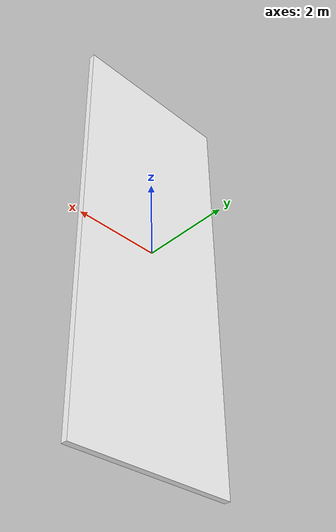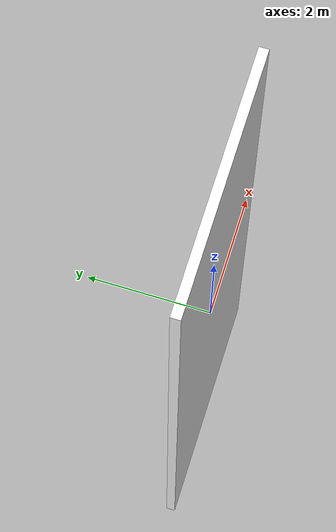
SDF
<?xml version='1.0'?>
<sdf version='1.6'>
  <model name='Wall'>
    <pose> 0 0 0 0 -0 0</pose>
    <static>true</static>
    <link name='Wall_0'>
      <collision name='Wall_0_Collision'>
        <geometry>
          <box>
            <size>4 0.15 10</size>
          </box>
        </geometry>
        <pose >0 0 0 0 -0 0</pose>
      </collision>
      <visual name='Wall_0_Visual'>
        <pose>0 0 0 0 -0 0</pose>
        <geometry>
          <box>
            <size>4 0.15 10</size>
          </box>
        </geometry>
        <material>
          <script>
              <uri>model:///Gazebo/Wall/materials/scripts</uri>
              <uri>model:///Gazebo/Wall/materials/textures</uri>
              <name>Wall/Diffuse</name>
          </script>
          <ambient>1 1 1 1</ambient>
        </material>
        <meta>
          <layer>0</layer>
        </meta>
      </visual>
    </link>
  </model>
</sdf>
